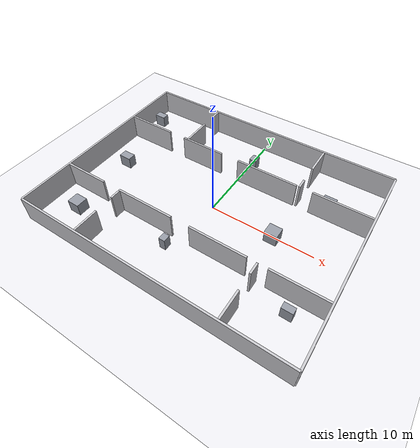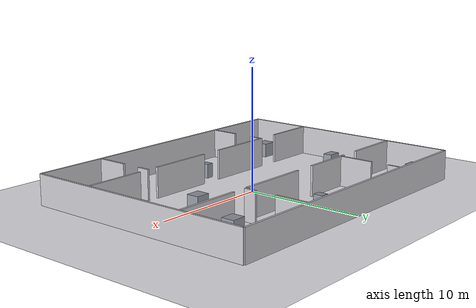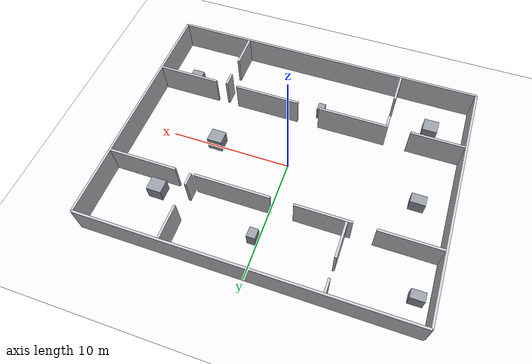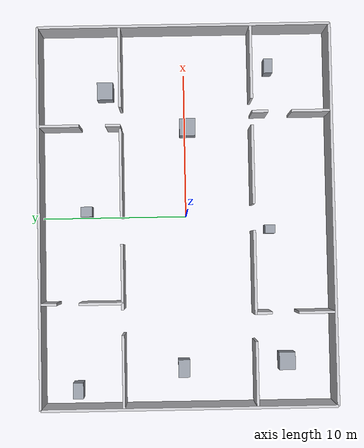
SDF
<?xml version="1.0"?>
<sdf version="1.9"><world name="new_room_world">
<plugin filename="gz-sim-physics-system" name="gz::sim::systems::Physics"/><plugin filename="gz-sim-user-commands-system" name="gz::sim::systems::UserCommands"/><plugin filename="gz-sim-scene-broadcaster-system" name="gz::sim::systems::SceneBroadcaster"/><plugin filename="gz-sim-sensors-system" name="gz::sim::systems::Sensors"><render_engine>ogre2</render_engine></plugin><plugin filename="gz-sim-imu-system" name="gz::sim::systems::Imu"/>
<physics name="new_room_realtime" type="ignored"><max_step_size>0.001</max_step_size><real_time_factor>1</real_time_factor></physics><gravity>0 0 -9.8</gravity><scene><ambient>0.85 0.85 0.87 1</ambient><background>0.68 0.68 0.71 1</background><shadows>false</shadows></scene><light name="sun" type="directional"><cast_shadows>false</cast_shadows><pose>0 0 10 0 0 0</pose><diffuse>0.95 0.95 0.95 1</diffuse><direction>-0.3 0.2 -1</direction></light>
<model name="new_room_ground"><static>true</static><link name="ground_link"><collision name="ground_collision"><geometry><plane><normal>0 0 1</normal><size>40 32</size></plane></geometry></collision><visual name="ground_visual"><geometry><plane><normal>0 0 1</normal><size>40 32</size></plane></geometry><material><ambient>0.92 0.92 0.94 1</ambient><diffuse>0.92 0.92 0.94 1</diffuse></material></visual></link></model>
<model name="mini_hospital_structure"><static>true</static><link name="structure">
<collision name="mx048_c000"><pose>0 10 1.25 0 0 0</pose><geometry><box><size>26 0.18 2.5</size></box></geometry></collision><visual name="mx048_v000"><pose>0 10 1.25 0 0 0</pose><geometry><box><size>26 0.18 2.5</size></box></geometry><material><ambient>0.78 0.78 0.80 1</ambient><diffuse>0.78 0.78 0.80 1</diffuse></material></visual>
<collision name="mx048_c001"><pose>0 -10 1.25 0 0 0</pose><geometry><box><size>26 0.18 2.5</size></box></geometry></collision><visual name="mx048_v001"><pose>0 -10 1.25 0 0 0</pose><geometry><box><size>26 0.18 2.5</size></box></geometry><material><ambient>0.78 0.78 0.80 1</ambient><diffuse>0.78 0.78 0.80 1</diffuse></material></visual>
<collision name="mx048_c002"><pose>-13 0 1.25 0 0 0</pose><geometry><box><size>0.18 20 2.5</size></box></geometry></collision><visual name="mx048_v002"><pose>-13 0 1.25 0 0 0</pose><geometry><box><size>0.18 20 2.5</size></box></geometry><material><ambient>0.78 0.78 0.80 1</ambient><diffuse>0.78 0.78 0.80 1</diffuse></material></visual>
<collision name="mx048_c003"><pose>13 0 1.25 0 0 0</pose><geometry><box><size>0.18 20 2.5</size></box></geometry></collision><visual name="mx048_v003"><pose>13 0 1.25 0 0 0</pose><geometry><box><size>0.18 20 2.5</size></box></geometry><material><ambient>0.78 0.78 0.80 1</ambient><diffuse>0.78 0.78 0.80 1</diffuse></material></visual>
<collision name="mx048_c004"><pose>-10.48 4.4 1.25 0 0 0</pose><geometry><box><size>4.86 0.18 2.5</size></box></geometry></collision><visual name="mx048_v004"><pose>-10.48 4.4 1.25 0 0 0</pose><geometry><box><size>4.86 0.18 2.5</size></box></geometry><material><ambient>0.78 0.78 0.80 1</ambient><diffuse>0.78 0.78 0.80 1</diffuse></material></visual>
<collision name="mx048_c005"><pose>-4.125 4.4 1.25 0 0 0</pose><geometry><box><size>4.45 0.18 2.5</size></box></geometry></collision><visual name="mx048_v005"><pose>-4.125 4.4 1.25 0 0 0</pose><geometry><box><size>4.45 0.18 2.5</size></box></geometry><material><ambient>0.78 0.78 0.80 1</ambient><diffuse>0.78 0.78 0.80 1</diffuse></material></visual>
<collision name="mx048_c006"><pose>2.925 4.4 1.25 0 0 0</pose><geometry><box><size>6.05 0.18 2.5</size></box></geometry></collision><visual name="mx048_v006"><pose>2.925 4.4 1.25 0 0 0</pose><geometry><box><size>6.05 0.18 2.5</size></box></geometry><material><ambient>0.78 0.78 0.80 1</ambient><diffuse>0.78 0.78 0.80 1</diffuse></material></visual>
<collision name="mx048_c007"><pose>10.18 4.4 1.25 0 0 0</pose><geometry><box><size>5.46 0.18 2.5</size></box></geometry></collision><visual name="mx048_v007"><pose>10.18 4.4 1.25 0 0 0</pose><geometry><box><size>5.46 0.18 2.5</size></box></geometry><material><ambient>0.78 0.78 0.80 1</ambient><diffuse>0.78 0.78 0.80 1</diffuse></material></visual>
<collision name="mx048_c008"><pose>-10.755 -4.6 1.25 0 0 0</pose><geometry><box><size>4.31 0.18 2.5</size></box></geometry></collision><visual name="mx048_v008"><pose>-10.755 -4.6 1.25 0 0 0</pose><geometry><box><size>4.31 0.18 2.5</size></box></geometry><material><ambient>0.78 0.78 0.80 1</ambient><diffuse>0.78 0.78 0.80 1</diffuse></material></visual>
<collision name="mx048_c009"><pose>-3.95 -4.6 1.25 0 0 0</pose><geometry><box><size>5.7 0.18 2.5</size></box></geometry></collision><visual name="mx048_v009"><pose>-3.95 -4.6 1.25 0 0 0</pose><geometry><box><size>5.7 0.18 2.5</size></box></geometry><material><ambient>0.78 0.78 0.80 1</ambient><diffuse>0.78 0.78 0.80 1</diffuse></material></visual>
<collision name="mx048_c010"><pose>3.4 -4.6 1.25 0 0 0</pose><geometry><box><size>5.4 0.18 2.5</size></box></geometry></collision><visual name="mx048_v010"><pose>3.4 -4.6 1.25 0 0 0</pose><geometry><box><size>5.4 0.18 2.5</size></box></geometry><material><ambient>0.78 0.78 0.80 1</ambient><diffuse>0.78 0.78 0.80 1</diffuse></material></visual>
<collision name="mx048_c011"><pose>10.405 -4.6 1.25 0 0 0</pose><geometry><box><size>5.01 0.18 2.5</size></box></geometry></collision><visual name="mx048_v011"><pose>10.405 -4.6 1.25 0 0 0</pose><geometry><box><size>5.01 0.18 2.5</size></box></geometry><material><ambient>0.78 0.78 0.80 1</ambient><diffuse>0.78 0.78 0.80 1</diffuse></material></visual>
<collision name="mx048_c012"><pose>-5.9 5.875 1.25 0 0 0</pose><geometry><box><size>0.18 2.95 2.5</size></box></geometry></collision><visual name="mx048_v012"><pose>-5.9 5.875 1.25 0 0 0</pose><geometry><box><size>0.18 2.95 2.5</size></box></geometry><material><ambient>0.78 0.78 0.80 1</ambient><diffuse>0.78 0.78 0.80 1</diffuse></material></visual>
<collision name="mx048_c013"><pose>-5.9 9.38 1.25 0 0 0</pose><geometry><box><size>0.18 1.06 2.5</size></box></geometry></collision><visual name="mx048_v013"><pose>-5.9 9.38 1.25 0 0 0</pose><geometry><box><size>0.18 1.06 2.5</size></box></geometry><material><ambient>0.78 0.78 0.80 1</ambient><diffuse>0.78 0.78 0.80 1</diffuse></material></visual>
<collision name="mx048_c014"><pose>6.2 4.9 1.25 0 0 0</pose><geometry><box><size>0.18 1 2.5</size></box></geometry></collision><visual name="mx048_v014"><pose>6.2 4.9 1.25 0 0 0</pose><geometry><box><size>0.18 1 2.5</size></box></geometry><material><ambient>0.78 0.78 0.80 1</ambient><diffuse>0.78 0.78 0.80 1</diffuse></material></visual>
<collision name="mx048_c015"><pose>6.2 8.555 1.25 0 0 0</pose><geometry><box><size>0.18 2.71 2.5</size></box></geometry></collision><visual name="mx048_v015"><pose>6.2 8.555 1.25 0 0 0</pose><geometry><box><size>0.18 2.71 2.5</size></box></geometry><material><ambient>0.78 0.78 0.80 1</ambient><diffuse>0.78 0.78 0.80 1</diffuse></material></visual>
<collision name="mx048_c016"><pose>-6.7 -8.705 1.25 0 0 0</pose><geometry><box><size>0.18 2.41 2.5</size></box></geometry></collision><visual name="mx048_v016"><pose>-6.7 -8.705 1.25 0 0 0</pose><geometry><box><size>0.18 2.41 2.5</size></box></geometry><material><ambient>0.78 0.78 0.80 1</ambient><diffuse>0.78 0.78 0.80 1</diffuse></material></visual>
<collision name="mx048_c017"><pose>-6.7 -5.15 1.25 0 0 0</pose><geometry><box><size>0.18 1.1 2.5</size></box></geometry></collision><visual name="mx048_v017"><pose>-6.7 -5.15 1.25 0 0 0</pose><geometry><box><size>0.18 1.1 2.5</size></box></geometry><material><ambient>0.78 0.78 0.80 1</ambient><diffuse>0.78 0.78 0.80 1</diffuse></material></visual>
<collision name="mx048_c018"><pose>7 -8.605 1.25 0 0 0</pose><geometry><box><size>0.18 2.61 2.5</size></box></geometry></collision><visual name="mx048_v018"><pose>7 -8.605 1.25 0 0 0</pose><geometry><box><size>0.18 2.61 2.5</size></box></geometry><material><ambient>0.78 0.78 0.80 1</ambient><diffuse>0.78 0.78 0.80 1</diffuse></material></visual>
<collision name="mx048_c019"><pose>7 -5.15 1.25 0 0 0</pose><geometry><box><size>0.18 1.1 2.5</size></box></geometry></collision><visual name="mx048_v019"><pose>7 -5.15 1.25 0 0 0</pose><geometry><box><size>0.18 1.1 2.5</size></box></geometry><material><ambient>0.78 0.78 0.80 1</ambient><diffuse>0.78 0.78 0.80 1</diffuse></material></visual>
<collision name="mx048_c020"><pose>-11.9 7.6 0.6 0 0 0</pose><geometry><box><size>1.1 0.7 1.2</size></box></geometry></collision><visual name="mx048_v020"><pose>-11.9 7.6 0.6 0 0 0</pose><geometry><box><size>1.1 0.7 1.2</size></box></geometry><material><ambient>0.58 0.60 0.64 1</ambient><diffuse>0.58 0.60 0.64 1</diffuse></material></visual>
<collision name="mx048_c021"><pose>0.4 6.9 0.6 0 0 0</pose><geometry><box><size>0.7 0.8 1.2</size></box></geometry></collision><visual name="mx048_v021"><pose>0.4 6.9 0.6 0 0 0</pose><geometry><box><size>0.7 0.8 1.2</size></box></geometry><material><ambient>0.58 0.60 0.64 1</ambient><diffuse>0.58 0.60 0.64 1</diffuse></material></visual>
<collision name="mx048_c022"><pose>8.8 5.5 0.6 0 0 0</pose><geometry><box><size>1.2 1.1 1.2</size></box></geometry></collision><visual name="mx048_v022"><pose>8.8 5.5 0.6 0 0 0</pose><geometry><box><size>1.2 1.1 1.2</size></box></geometry><material><ambient>0.58 0.60 0.64 1</ambient><diffuse>0.58 0.60 0.64 1</diffuse></material></visual>
<collision name="mx048_c023"><pose>-10.1 -6.8 0.6 0 0 0</pose><geometry><box><size>1.2 1.1 1.2</size></box></geometry></collision><visual name="mx048_v023"><pose>-10.1 -6.8 0.6 0 0 0</pose><geometry><box><size>1.2 1.1 1.2</size></box></geometry><material><ambient>0.58 0.60 0.64 1</ambient><diffuse>0.58 0.60 0.64 1</diffuse></material></visual>
<collision name="mx048_c024"><pose>-1 -5.8 0.6 0 0 0</pose><geometry><box><size>0.6 0.7 1.2</size></box></geometry></collision><visual name="mx048_v024"><pose>-1 -5.8 0.6 0 0 0</pose><geometry><box><size>0.6 0.7 1.2</size></box></geometry><material><ambient>0.58 0.60 0.64 1</ambient><diffuse>0.58 0.60 0.64 1</diffuse></material></visual>
<collision name="mx048_c025"><pose>10.4 -5.9 0.6 0 0 0</pose><geometry><box><size>1 0.6 1.2</size></box></geometry></collision><visual name="mx048_v025"><pose>10.4 -5.9 0.6 0 0 0</pose><geometry><box><size>1 0.6 1.2</size></box></geometry><material><ambient>0.58 0.60 0.64 1</ambient><diffuse>0.58 0.60 0.64 1</diffuse></material></visual>
<collision name="mx048_c026"><pose>-10.5 0.3 0.6 0 0 0</pose><geometry><box><size>1.2 0.8 1.2</size></box></geometry></collision><visual name="mx048_v026"><pose>-10.5 0.3 0.6 0 0 0</pose><geometry><box><size>1.2 0.8 1.2</size></box></geometry><material><ambient>0.58 0.60 0.64 1</ambient><diffuse>0.58 0.60 0.64 1</diffuse></material></visual>
<collision name="mx048_c027"><pose>6.2 -0.2 0.6 0 0 0</pose><geometry><box><size>1.2 1.1 1.2</size></box></geometry></collision><visual name="mx048_v027"><pose>6.2 -0.2 0.6 0 0 0</pose><geometry><box><size>1.2 1.1 1.2</size></box></geometry><material><ambient>0.58 0.60 0.64 1</ambient><diffuse>0.58 0.60 0.64 1</diffuse></material></visual>
</link></model></world></sdf>
